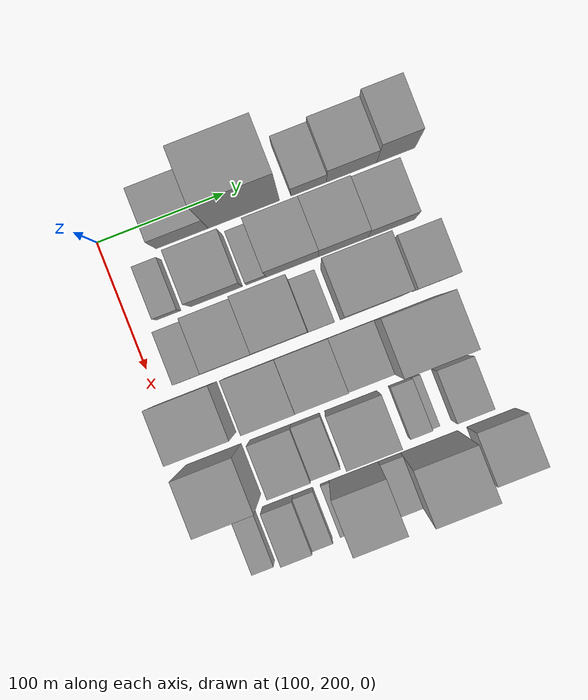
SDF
<sdf version="1.6">
 <world name="default">
  <model name="building_32">
   <static>1</static>
   <pose>100.0000 259.6823 0 0.000000 0.000000 0.000000</pose>
   <link name="link">
    <pose>0 0 34.50 0 0 0</pose>
    <collision name="collision"><geometry><box><size>40.0000 41.1518 69.0000</size></box></geometry></collision>
    <visual name="visual">
     <cast_shadows>0</cast_shadows>
     <geometry><box><size>40.0000 41.1518 69.0000</size></box></geometry>
     <material>
      <script>
       <uri>model://grey_wall/materials/scripts</uri>
       <uri>model://grey_wall/materials/textures</uri>
       <name>vrc/grey_wall</name>
      </script>
     </material>
    </visual>
   </link>
  </model>
  <model name="building_33">
   <static>1</static>
   <pose>100.0000 308.3205 0 0.000000 0.000000 0.000000</pose>
   <link name="link">
    <pose>0 0 85.50 0 0 0</pose>
    <collision name="collision"><geometry><box><size>40.0000 56.1244 171.0000</size></box></geometry></collision>
    <visual name="visual">
     <cast_shadows>0</cast_shadows>
     <geometry><box><size>40.0000 56.1244 171.0000</size></box></geometry>
     <material>
      <script>
       <uri>model://grey_wall/materials/scripts</uri>
       <uri>model://grey_wall/materials/textures</uri>
       <name>vrc/grey_wall</name>
      </script>
     </material>
    </visual>
   </link>
  </model>
  <model name="building_34">
   <static>1</static>
   <pose>100.0000 359.3745 0 0.000000 0.000000 0.000000</pose>
   <link name="link">
    <pose>0 0 24.00 0 0 0</pose>
    <collision name="collision"><geometry><box><size>40.0000 27.9836 48.0000</size></box></geometry></collision>
    <visual name="visual">
     <cast_shadows>0</cast_shadows>
     <geometry><box><size>40.0000 27.9836 48.0000</size></box></geometry>
     <material>
      <script>
       <uri>model://grey_wall/materials/scripts</uri>
       <uri>model://grey_wall/materials/textures</uri>
       <name>vrc/grey_wall</name>
      </script>
     </material>
    </visual>
   </link>
  </model>
  <model name="building_35">
   <static>1</static>
   <pose>100.0000 393.0506 0 0.000000 0.000000 0.000000</pose>
   <link name="link">
    <pose>0 0 34.50 0 0 0</pose>
    <collision name="collision"><geometry><box><size>40.0000 39.3685 69.0000</size></box></geometry></collision>
    <visual name="visual">
     <cast_shadows>0</cast_shadows>
     <geometry><box><size>40.0000 39.3685 69.0000</size></box></geometry>
     <material>
      <script>
       <uri>model://grey_wall/materials/scripts</uri>
       <uri>model://grey_wall/materials/textures</uri>
       <name>vrc/grey_wall</name>
      </script>
     </material>
    </visual>
   </link>
  </model>
  <model name="building_36">
   <static>1</static>
   <pose>100.0000 427.8991 0 0.000000 0.000000 0.000000</pose>
   <link name="link">
    <pose>0 0 48.00 0 0 0</pose>
    <collision name="collision"><geometry><box><size>40.0000 30.3287 96.0000</size></box></geometry></collision>
    <visual name="visual">
     <cast_shadows>0</cast_shadows>
     <geometry><box><size>40.0000 30.3287 96.0000</size></box></geometry>
     <material>
      <script>
       <uri>model://grey_wall/materials/scripts</uri>
       <uri>model://grey_wall/materials/textures</uri>
       <name>vrc/grey_wall</name>
      </script>
     </material>
    </visual>
   </link>
  </model>
  <model name="building_89">
   <static>1</static>
   <pose>149.0000 230.0411 0 0.000000 0.000000 0.000000</pose>
   <link name="link">
    <pose>0 0 18.00 0 0 0</pose>
    <collision name="collision"><geometry><box><size>40.0000 18.9281 36.0000</size></box></geometry></collision>
    <visual name="visual">
     <cast_shadows>0</cast_shadows>
     <geometry><box><size>40.0000 18.9281 36.0000</size></box></geometry>
     <material>
      <script>
       <uri>model://grey_wall/materials/scripts</uri>
       <uri>model://grey_wall/materials/textures</uri>
       <name>vrc/grey_wall</name>
      </script>
     </material>
    </visual>
   </link>
  </model>
  <model name="building_90">
   <static>1</static>
   <pose>149.0000 267.8626 0 0.000000 0.000000 0.000000</pose>
   <link name="link">
    <pose>0 0 34.50 0 0 0</pose>
    <collision name="collision"><geometry><box><size>40.0000 40.7148 69.0000</size></box></geometry></collision>
    <visual name="visual">
     <cast_shadows>0</cast_shadows>
     <geometry><box><size>40.0000 40.7148 69.0000</size></box></geometry>
     <material>
      <script>
       <uri>model://grey_wall/materials/scripts</uri>
       <uri>model://grey_wall/materials/textures</uri>
       <name>vrc/grey_wall</name>
      </script>
     </material>
    </visual>
   </link>
  </model>
  <model name="building_91">
   <static>1</static>
   <pose>149.0000 299.0178 0 0.000000 0.000000 0.000000</pose>
   <link name="link">
    <pose>0 0 15.00 0 0 0</pose>
    <collision name="collision"><geometry><box><size>40.0000 15.5957 30.0000</size></box></geometry></collision>
    <visual name="visual">
     <cast_shadows>0</cast_shadows>
     <geometry><box><size>40.0000 15.5957 30.0000</size></box></geometry>
     <material>
      <script>
       <uri>model://grey_wall/materials/scripts</uri>
       <uri>model://grey_wall/materials/textures</uri>
       <name>vrc/grey_wall</name>
      </script>
     </material>
    </visual>
   </link>
  </model>
  <model name="building_92">
   <static>1</static>
   <pose>149.0000 327.3763 0 0.000000 0.000000 0.000000</pose>
   <link name="link">
    <pose>0 0 37.50 0 0 0</pose>
    <collision name="collision"><geometry><box><size>40.0000 41.1214 75.0000</size></box></geometry></collision>
    <visual name="visual">
     <cast_shadows>0</cast_shadows>
     <geometry><box><size>40.0000 41.1214 75.0000</size></box></geometry>
     <material>
      <script>
       <uri>model://grey_wall/materials/scripts</uri>
       <uri>model://grey_wall/materials/textures</uri>
       <name>vrc/grey_wall</name>
      </script>
     </material>
    </visual>
   </link>
  </model>
  <model name="building_93">
   <static>1</static>
   <pose>149.0000 367.3671 0 0.000000 0.000000 0.000000</pose>
   <link name="link">
    <pose>0 0 37.50 0 0 0</pose>
    <collision name="collision"><geometry><box><size>40.0000 38.8602 75.0000</size></box></geometry></collision>
    <visual name="visual">
     <cast_shadows>0</cast_shadows>
     <geometry><box><size>40.0000 38.8602 75.0000</size></box></geometry>
     <material>
      <script>
       <uri>model://grey_wall/materials/scripts</uri>
       <uri>model://grey_wall/materials/textures</uri>
       <name>vrc/grey_wall</name>
      </script>
     </material>
    </visual>
   </link>
  </model>
  <model name="building_94">
   <static>1</static>
   <pose>149.0000 405.2362 0 0.000000 0.000000 0.000000</pose>
   <link name="link">
    <pose>0 0 33.00 0 0 0</pose>
    <collision name="collision"><geometry><box><size>40.0000 36.8780 66.0000</size></box></geometry></collision>
    <visual name="visual">
     <cast_shadows>0</cast_shadows>
     <geometry><box><size>40.0000 36.8780 66.0000</size></box></geometry>
     <material>
      <script>
       <uri>model://grey_wall/materials/scripts</uri>
       <uri>model://grey_wall/materials/textures</uri>
       <name>vrc/grey_wall</name>
      </script>
     </material>
    </visual>
   </link>
  </model>
  <model name="building_140">
   <static>1</static>
   <pose>198.0000 230.9407 0 0.000000 0.000000 0.000000</pose>
   <link name="link">
    <pose>0 0 22.50 0 0 0</pose>
    <collision name="collision"><geometry><box><size>40.0000 25.1355 45.0000</size></box></geometry></collision>
    <visual name="visual">
     <cast_shadows>0</cast_shadows>
     <geometry><box><size>40.0000 25.1355 45.0000</size></box></geometry>
     <material>
      <script>
       <uri>model://grey_wall/materials/scripts</uri>
       <uri>model://grey_wall/materials/textures</uri>
       <name>vrc/grey_wall</name>
      </script>
     </material>
    </visual>
   </link>
  </model>
  <model name="building_141">
   <static>1</static>
   <pose>198.0000 262.3758 0 0.000000 0.000000 0.000000</pose>
   <link name="link">
    <pose>0 0 48.00 0 0 0</pose>
    <collision name="collision"><geometry><box><size>40.0000 37.7347 96.0000</size></box></geometry></collision>
    <visual name="visual">
     <cast_shadows>0</cast_shadows>
     <geometry><box><size>40.0000 37.7347 96.0000</size></box></geometry>
     <material>
      <script>
       <uri>model://grey_wall/materials/scripts</uri>
       <uri>model://grey_wall/materials/textures</uri>
       <name>vrc/grey_wall</name>
      </script>
     </material>
    </visual>
   </link>
  </model>
  <model name="building_142">
   <static>1</static>
   <pose>198.0000 301.0584 0 0.000000 0.000000 0.000000</pose>
   <link name="link">
    <pose>0 0 63.00 0 0 0</pose>
    <collision name="collision"><geometry><box><size>40.0000 39.6305 126.0000</size></box></geometry></collision>
    <visual name="visual">
     <cast_shadows>0</cast_shadows>
     <geometry><box><size>40.0000 39.6305 126.0000</size></box></geometry>
     <material>
      <script>
       <uri>model://grey_wall/materials/scripts</uri>
       <uri>model://grey_wall/materials/textures</uri>
       <name>vrc/grey_wall</name>
      </script>
     </material>
    </visual>
   </link>
  </model>
  <model name="building_143">
   <static>1</static>
   <pose>198.0000 330.9256 0 0.000000 0.000000 0.000000</pose>
   <link name="link">
    <pose>0 0 18.00 0 0 0</pose>
    <collision name="collision"><geometry><box><size>40.0000 20.1038 36.0000</size></box></geometry></collision>
    <visual name="visual">
     <cast_shadows>0</cast_shadows>
     <geometry><box><size>40.0000 20.1038 36.0000</size></box></geometry>
     <material>
      <script>
       <uri>model://grey_wall/materials/scripts</uri>
       <uri>model://grey_wall/materials/textures</uri>
       <name>vrc/grey_wall</name>
      </script>
     </material>
    </visual>
   </link>
  </model>
  <model name="building_144">
   <static>1</static>
   <pose>198.0000 369.8053 0 0.000000 0.000000 0.000000</pose>
   <link name="link">
    <pose>0 0 75.00 0 0 0</pose>
    <collision name="collision"><geometry><box><size>40.0000 47.6557 150.0000</size></box></geometry></collision>
    <visual name="visual">
     <cast_shadows>0</cast_shadows>
     <geometry><box><size>40.0000 47.6557 150.0000</size></box></geometry>
     <material>
      <script>
       <uri>model://grey_wall/materials/scripts</uri>
       <uri>model://grey_wall/materials/textures</uri>
       <name>vrc/grey_wall</name>
      </script>
     </material>
    </visual>
   </link>
  </model>
  <model name="building_145">
   <static>1</static>
   <pose>198.0000 418.8979 0 0.000000 0.000000 0.000000</pose>
   <link name="link">
    <pose>0 0 31.50 0 0 0</pose>
    <collision name="collision"><geometry><box><size>40.0000 32.5294 63.0000</size></box></geometry></collision>
    <visual name="visual">
     <cast_shadows>0</cast_shadows>
     <geometry><box><size>40.0000 32.5294 63.0000</size></box></geometry>
     <material>
      <script>
       <uri>model://grey_wall/materials/scripts</uri>
       <uri>model://grey_wall/materials/textures</uri>
       <name>vrc/grey_wall</name>
      </script>
     </material>
    </visual>
   </link>
  </model>
  <model name="building_187">
   <static>1</static>
   <pose>247.0000 221.1650 0 0.000000 0.000000 0.000000</pose>
   <link name="link">
    <pose>0 0 43.50 0 0 0</pose>
    <collision name="collision"><geometry><box><size>40.0000 47.0825 87.0000</size></box></geometry></collision>
    <visual name="visual">
     <cast_shadows>0</cast_shadows>
     <geometry><box><size>40.0000 47.0825 87.0000</size></box></geometry>
     <material>
      <script>
       <uri>model://grey_wall/materials/scripts</uri>
       <uri>model://grey_wall/materials/textures</uri>
       <name>vrc/grey_wall</name>
      </script>
     </material>
    </visual>
   </link>
  </model>
  <model name="building_188">
   <static>1</static>
   <pose>247.0000 272.4633 0 0.000000 0.000000 0.000000</pose>
   <link name="link">
    <pose>0 0 39.00 0 0 0</pose>
    <collision name="collision"><geometry><box><size>40.0000 39.5142 78.0000</size></box></geometry></collision>
    <visual name="visual">
     <cast_shadows>0</cast_shadows>
     <geometry><box><size>40.0000 39.5142 78.0000</size></box></geometry>
     <material>
      <script>
       <uri>model://grey_wall/materials/scripts</uri>
       <uri>model://grey_wall/materials/textures</uri>
       <name>vrc/grey_wall</name>
      </script>
     </material>
    </visual>
   </link>
  </model>
  <model name="building_189">
   <static>1</static>
   <pose>247.0000 311.9740 0 0.000000 0.000000 0.000000</pose>
   <link name="link">
    <pose>0 0 37.50 0 0 0</pose>
    <collision name="collision"><geometry><box><size>40.0000 39.5072 75.0000</size></box></geometry></collision>
    <visual name="visual">
     <cast_shadows>0</cast_shadows>
     <geometry><box><size>40.0000 39.5072 75.0000</size></box></geometry>
     <material>
      <script>
       <uri>model://grey_wall/materials/scripts</uri>
       <uri>model://grey_wall/materials/textures</uri>
       <name>vrc/grey_wall</name>
      </script>
     </material>
    </visual>
   </link>
  </model>
  <model name="building_190">
   <static>1</static>
   <pose>247.0000 348.9388 0 0.000000 0.000000 0.000000</pose>
   <link name="link">
    <pose>0 0 31.50 0 0 0</pose>
    <collision name="collision"><geometry><box><size>40.0000 34.4222 63.0000</size></box></geometry></collision>
    <visual name="visual">
     <cast_shadows>0</cast_shadows>
     <geometry><box><size>40.0000 34.4222 63.0000</size></box></geometry>
     <material>
      <script>
       <uri>model://grey_wall/materials/scripts</uri>
       <uri>model://grey_wall/materials/textures</uri>
       <name>vrc/grey_wall</name>
      </script>
     </material>
    </visual>
   </link>
  </model>
  <model name="building_191">
   <static>1</static>
   <pose>247.0000 391.2923 0 0.000000 0.000000 0.000000</pose>
   <link name="link">
    <pose>0 0 82.50 0 0 0</pose>
    <collision name="collision"><geometry><box><size>40.0000 50.2849 165.0000</size></box></geometry></collision>
    <visual name="visual">
     <cast_shadows>0</cast_shadows>
     <geometry><box><size>40.0000 50.2849 165.0000</size></box></geometry>
     <material>
      <script>
       <uri>model://grey_wall/materials/scripts</uri>
       <uri>model://grey_wall/materials/textures</uri>
       <name>vrc/grey_wall</name>
      </script>
     </material>
    </visual>
   </link>
  </model>
  <model name="building_234">
   <static>1</static>
   <pose>296.0000 223.3848 0 0.000000 0.000000 0.000000</pose>
   <link name="link">
    <pose>0 0 60.00 0 0 0</pose>
    <collision name="collision"><geometry><box><size>40.0000 43.3829 120.0000</size></box></geometry></collision>
    <visual name="visual">
     <cast_shadows>0</cast_shadows>
     <geometry><box><size>40.0000 43.3829 120.0000</size></box></geometry>
     <material>
      <script>
       <uri>model://grey_wall/materials/scripts</uri>
       <uri>model://grey_wall/materials/textures</uri>
       <name>vrc/grey_wall</name>
      </script>
     </material>
    </visual>
   </link>
  </model>
  <model name="building_235">
   <static>1</static>
   <pose>296.0000 268.2190 0 0.000000 0.000000 0.000000</pose>
   <link name="link">
    <pose>0 0 30.00 0 0 0</pose>
    <collision name="collision"><geometry><box><size>40.0000 32.2855 60.0000</size></box></geometry></collision>
    <visual name="visual">
     <cast_shadows>0</cast_shadows>
     <geometry><box><size>40.0000 32.2855 60.0000</size></box></geometry>
     <material>
      <script>
       <uri>model://grey_wall/materials/scripts</uri>
       <uri>model://grey_wall/materials/textures</uri>
       <name>vrc/grey_wall</name>
      </script>
     </material>
    </visual>
   </link>
  </model>
  <model name="building_236">
   <static>1</static>
   <pose>296.0000 295.6253 0 0.000000 0.000000 0.000000</pose>
   <link name="link">
    <pose>0 0 22.50 0 0 0</pose>
    <collision name="collision"><geometry><box><size>40.0000 22.5272 45.0000</size></box></geometry></collision>
    <visual name="visual">
     <cast_shadows>0</cast_shadows>
     <geometry><box><size>40.0000 22.5272 45.0000</size></box></geometry>
     <material>
      <script>
       <uri>model://grey_wall/materials/scripts</uri>
       <uri>model://grey_wall/materials/textures</uri>
       <name>vrc/grey_wall</name>
      </script>
     </material>
    </visual>
   </link>
  </model>
  <model name="building_237">
   <static>1</static>
   <pose>296.0000 331.4336 0 0.000000 0.000000 0.000000</pose>
   <link name="link">
    <pose>0 0 37.50 0 0 0</pose>
    <collision name="collision"><geometry><box><size>40.0000 41.0893 75.0000</size></box></geometry></collision>
    <visual name="visual">
     <cast_shadows>0</cast_shadows>
     <geometry><box><size>40.0000 41.0893 75.0000</size></box></geometry>
     <material>
      <script>
       <uri>model://grey_wall/materials/scripts</uri>
       <uri>model://grey_wall/materials/textures</uri>
       <name>vrc/grey_wall</name>
      </script>
     </material>
    </visual>
   </link>
  </model>
  <model name="building_238">
   <static>1</static>
   <pose>296.0000 369.6253 0 0.000000 0.000000 0.000000</pose>
   <link name="link">
    <pose>0 0 15.00 0 0 0</pose>
    <collision name="collision"><geometry><box><size>40.0000 17.2942 30.0000</size></box></geometry></collision>
    <visual name="visual">
     <cast_shadows>0</cast_shadows>
     <geometry><box><size>40.0000 17.2942 30.0000</size></box></geometry>
     <material>
      <script>
       <uri>model://grey_wall/materials/scripts</uri>
       <uri>model://grey_wall/materials/textures</uri>
       <name>vrc/grey_wall</name>
      </script>
     </material>
    </visual>
   </link>
  </model>
  <model name="building_239">
   <static>1</static>
   <pose>296.0000 381.6330 0 0.000000 0.000000 0.000000</pose>
   <link name="link">
    <pose>0 0 7.50 0 0 0</pose>
    <collision name="collision"><geometry><box><size>40.0000 6.7213 15.0000</size></box></geometry></collision>
    <visual name="visual">
     <cast_shadows>0</cast_shadows>
     <geometry><box><size>40.0000 6.7213 15.0000</size></box></geometry>
     <material>
      <script>
       <uri>model://grey_wall/materials/scripts</uri>
       <uri>model://grey_wall/materials/textures</uri>
       <name>vrc/grey_wall</name>
      </script>
     </material>
    </visual>
   </link>
  </model>
  <model name="building_240">
   <static>1</static>
   <pose>296.0000 409.1704 0 0.000000 0.000000 0.000000</pose>
   <link name="link">
    <pose>0 0 24.00 0 0 0</pose>
    <collision name="collision"><geometry><box><size>40.0000 28.3536 48.0000</size></box></geometry></collision>
    <visual name="visual">
     <cast_shadows>0</cast_shadows>
     <geometry><box><size>40.0000 28.3536 48.0000</size></box></geometry>
     <material>
      <script>
       <uri>model://grey_wall/materials/scripts</uri>
       <uri>model://grey_wall/materials/textures</uri>
       <name>vrc/grey_wall</name>
      </script>
     </material>
    </visual>
   </link>
  </model>
  <model name="building_280">
   <static>1</static>
   <pose>345.0000 228.4265 0 0.000000 0.000000 0.000000</pose>
   <link name="link">
    <pose>0 0 15.00 0 0 0</pose>
    <collision name="collision"><geometry><box><size>40.0000 16.6444 30.0000</size></box></geometry></collision>
    <visual name="visual">
     <cast_shadows>0</cast_shadows>
     <geometry><box><size>40.0000 16.6444 30.0000</size></box></geometry>
     <material>
      <script>
       <uri>model://grey_wall/materials/scripts</uri>
       <uri>model://grey_wall/materials/textures</uri>
       <name>vrc/grey_wall</name>
      </script>
     </material>
    </visual>
   </link>
  </model>
  <model name="building_281">
   <static>1</static>
   <pose>345.0000 254.6248 0 0.000000 0.000000 0.000000</pose>
   <link name="link">
    <pose>0 0 22.50 0 0 0</pose>
    <collision name="collision"><geometry><box><size>40.0000 23.7522 45.0000</size></box></geometry></collision>
    <visual name="visual">
     <cast_shadows>0</cast_shadows>
     <geometry><box><size>40.0000 23.7522 45.0000</size></box></geometry>
     <material>
      <script>
       <uri>model://grey_wall/materials/scripts</uri>
       <uri>model://grey_wall/materials/textures</uri>
       <name>vrc/grey_wall</name>
      </script>
     </material>
    </visual>
   </link>
  </model>
  <model name="building_282">
   <static>1</static>
   <pose>345.0000 274.4206 0 0.000000 0.000000 0.000000</pose>
   <link name="link">
    <pose>0 0 15.00 0 0 0</pose>
    <collision name="collision"><geometry><box><size>40.0000 15.8394 30.0000</size></box></geometry></collision>
    <visual name="visual">
     <cast_shadows>0</cast_shadows>
     <geometry><box><size>40.0000 15.8394 30.0000</size></box></geometry>
     <material>
      <script>
       <uri>model://grey_wall/materials/scripts</uri>
       <uri>model://grey_wall/materials/textures</uri>
       <name>vrc/grey_wall</name>
      </script>
     </material>
    </visual>
   </link>
  </model>
  <model name="building_283">
   <static>1</static>
   <pose>345.0000 291.7623 0 0.000000 0.000000 0.000000</pose>
   <link name="link">
    <pose>0 0 7.50 0 0 0</pose>
    <collision name="collision"><geometry><box><size>40.0000 6.8439 15.0000</size></box></geometry></collision>
    <visual name="visual">
     <cast_shadows>0</cast_shadows>
     <geometry><box><size>40.0000 6.8439 15.0000</size></box></geometry>
     <material>
      <script>
       <uri>model://grey_wall/materials/scripts</uri>
       <uri>model://grey_wall/materials/textures</uri>
       <name>vrc/grey_wall</name>
      </script>
     </material>
    </visual>
   </link>
  </model>
  <model name="building_284">
   <static>1</static>
   <pose>345.0000 314.4939 0 0.000000 0.000000 0.000000</pose>
   <link name="link">
    <pose>0 0 61.50 0 0 0</pose>
    <collision name="collision"><geometry><box><size>40.0000 38.6193 123.0000</size></box></geometry></collision>
    <visual name="visual">
     <cast_shadows>0</cast_shadows>
     <geometry><box><size>40.0000 38.6193 123.0000</size></box></geometry>
     <material>
      <script>
       <uri>model://grey_wall/materials/scripts</uri>
       <uri>model://grey_wall/materials/textures</uri>
       <name>vrc/grey_wall</name>
      </script>
     </material>
    </visual>
   </link>
  </model>
  <model name="building_285">
   <static>1</static>
   <pose>345.0000 342.6955 0 0.000000 0.000000 0.000000</pose>
   <link name="link">
    <pose>0 0 15.00 0 0 0</pose>
    <collision name="collision"><geometry><box><size>40.0000 17.7839 30.0000</size></box></geometry></collision>
    <visual name="visual">
     <cast_shadows>0</cast_shadows>
     <geometry><box><size>40.0000 17.7839 30.0000</size></box></geometry>
     <material>
      <script>
       <uri>model://grey_wall/materials/scripts</uri>
       <uri>model://grey_wall/materials/textures</uri>
       <name>vrc/grey_wall</name>
      </script>
     </material>
    </visual>
   </link>
  </model>
  <model name="building_286">
   <static>1</static>
   <pose>345.0000 374.1527 0 0.000000 0.000000 0.000000</pose>
   <link name="link">
    <pose>0 0 67.50 0 0 0</pose>
    <collision name="collision"><geometry><box><size>40.0000 45.1304 135.0000</size></box></geometry></collision>
    <visual name="visual">
     <cast_shadows>0</cast_shadows>
     <geometry><box><size>40.0000 45.1304 135.0000</size></box></geometry>
     <material>
      <script>
       <uri>model://grey_wall/materials/scripts</uri>
       <uri>model://grey_wall/materials/textures</uri>
       <name>vrc/grey_wall</name>
      </script>
     </material>
    </visual>
   </link>
  </model>
  <model name="building_287">
   <static>1</static>
   <pose>345.0000 422.9305 0 0.000000 0.000000 0.000000</pose>
   <link name="link">
    <pose>0 0 33.00 0 0 0</pose>
    <collision name="collision"><geometry><box><size>40.0000 38.4253 66.0000</size></box></geometry></collision>
    <visual name="visual">
     <cast_shadows>0</cast_shadows>
     <geometry><box><size>40.0000 38.4253 66.0000</size></box></geometry>
     <material>
      <script>
       <uri>model://grey_wall/materials/scripts</uri>
       <uri>model://grey_wall/materials/textures</uri>
       <name>vrc/grey_wall</name>
      </script>
     </material>
    </visual>
   </link>
  </model>
 </world>
</sdf>
